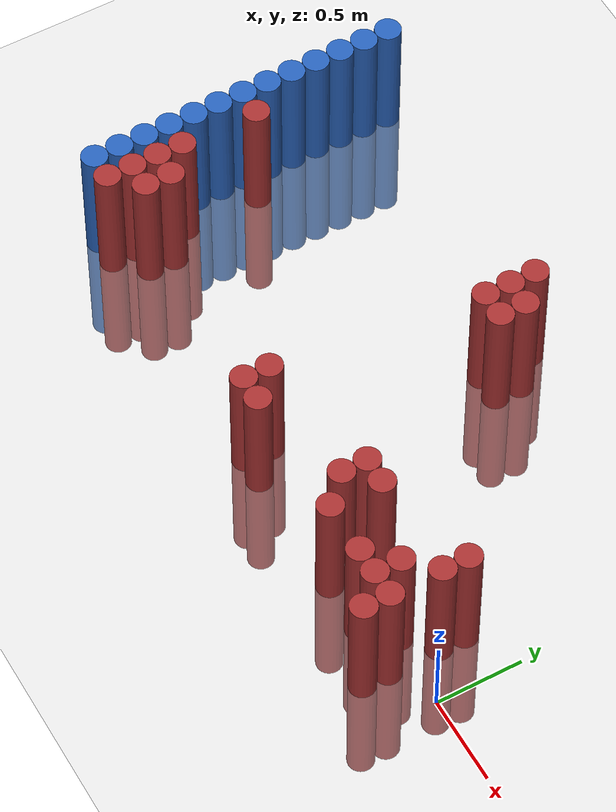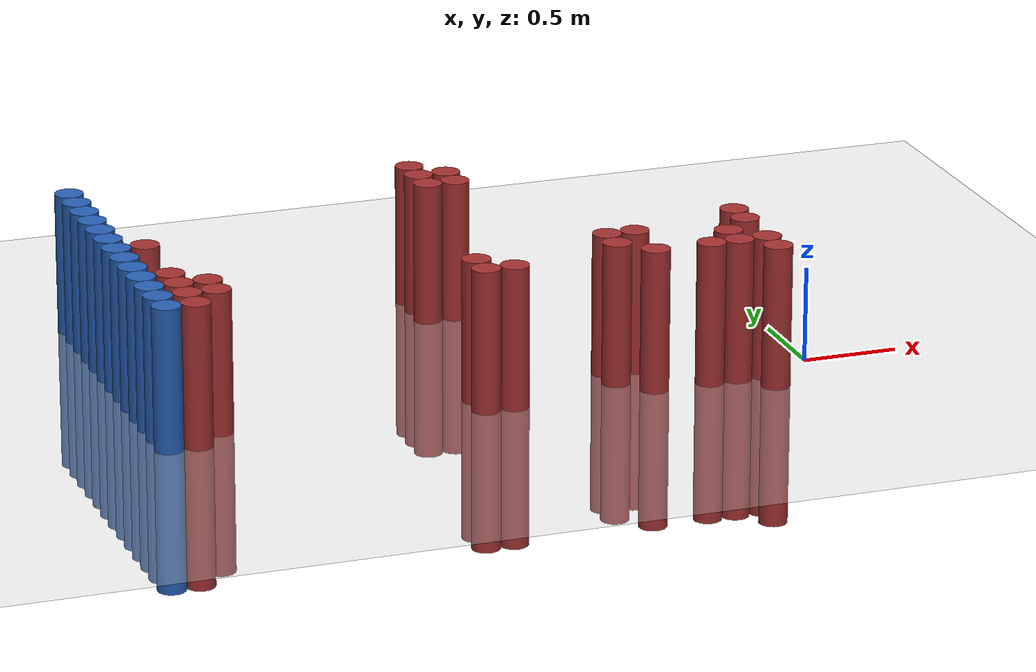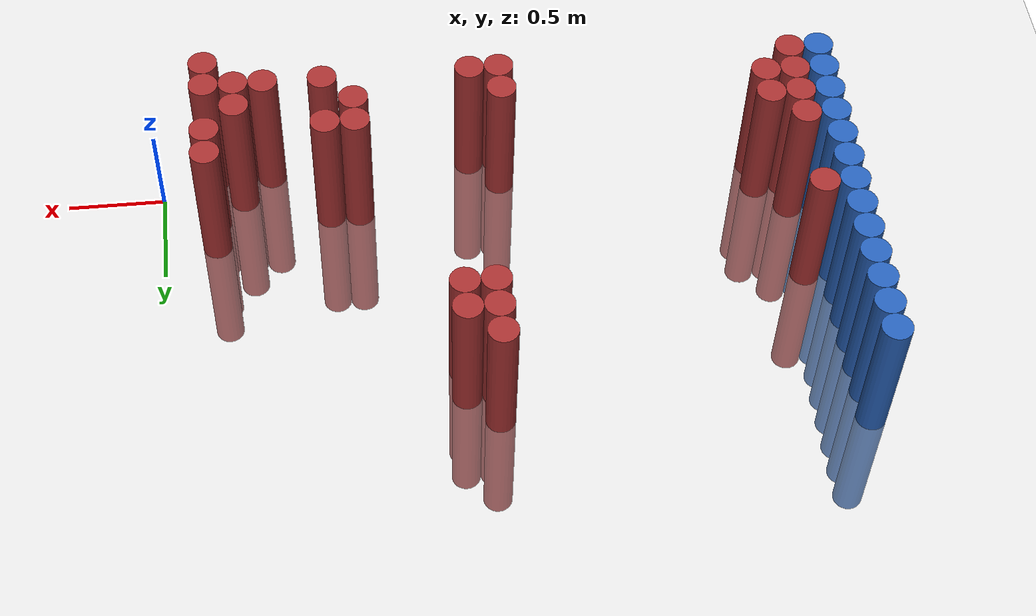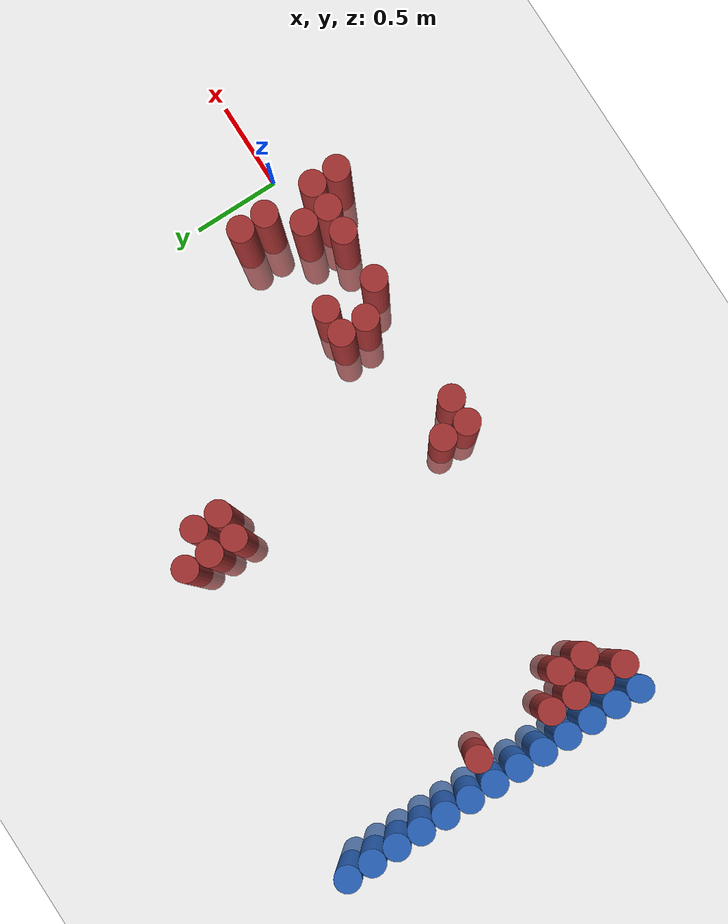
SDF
<sdf version="1.6">
 <world name="default">
  <model name="ground_plane">
   <static>1</static>
   <link name="link">
    <collision name="collision">
     <geometry><plane><normal>0 0 1</normal><size>100 100</size></plane></geometry>
     <surface><friction><ode><mu>100</mu><mu2>50</mu2></ode></friction></surface>
    </collision>
    <visual name="visual">
     <cast_shadows>0</cast_shadows>
     <geometry><plane><normal>0 0 1</normal><size>100 100</size></plane></geometry>
     <material>
      <script><uri>file://media/materials/scripts/gazebo.material</uri><name>Gazebo/Grey</name></script>
     </material>
    </visual>
   </link>
  </model>
  <model name="unit_cylinder_113">
   <static>1</static>
   <pose>-3.425000 -0.125000 0.000000 0.000000 0.000000 0.000000</pose>
   <link name="link">
    <inertial>
     <mass>1</mass>
     <inertia><ixx>0.145833</ixx><ixy>0</ixy><ixz>0</ixz><iyy>0.145833</iyy><iyz>0</iyz><izz>0.125</izz></inertia>
    </inertial>
    <collision name="collision">
     <geometry><cylinder><radius>0.075000</radius><length>1.5</length></cylinder></geometry>
    </collision>
    <visual name="visual">
     <geometry><cylinder><radius>0.075000</radius><length>1.5</length></cylinder></geometry>
     <material>
      <ambient>0.152000 0.379000 0.720000 1</ambient>
      <diffuse>0.152000 0.379000 0.720000 1</diffuse>
     </material>
     <material>
      <script><name>Gazebo/Grey</name><uri>file://media/materials/scripts/gazebo.material</uri></script>
     </material>
    </visual>
   </link>
  </model>
  <model name="unit_cylinder_115">
   <static>1</static>
   <pose>-3.425000 0.025000 0.000000 0.000000 0.000000 0.000000</pose>
   <link name="link">
    <inertial>
     <mass>1</mass>
     <inertia><ixx>0.145833</ixx><ixy>0</ixy><ixz>0</ixz><iyy>0.145833</iyy><iyz>0</iyz><izz>0.125</izz></inertia>
    </inertial>
    <collision name="collision">
     <geometry><cylinder><radius>0.075000</radius><length>1.5</length></cylinder></geometry>
    </collision>
    <visual name="visual">
     <geometry><cylinder><radius>0.075000</radius><length>1.5</length></cylinder></geometry>
     <material>
      <ambient>0.152000 0.379000 0.720000 1</ambient>
      <diffuse>0.152000 0.379000 0.720000 1</diffuse>
     </material>
     <material>
      <script><name>Gazebo/Grey</name><uri>file://media/materials/scripts/gazebo.material</uri></script>
     </material>
    </visual>
   </link>
  </model>
  <model name="unit_cylinder_117">
   <static>1</static>
   <pose>-3.425000 0.175000 0.000000 0.000000 0.000000 0.000000</pose>
   <link name="link">
    <inertial>
     <mass>1</mass>
     <inertia><ixx>0.145833</ixx><ixy>0</ixy><ixz>0</ixz><iyy>0.145833</iyy><iyz>0</iyz><izz>0.125</izz></inertia>
    </inertial>
    <collision name="collision">
     <geometry><cylinder><radius>0.075000</radius><length>1.5</length></cylinder></geometry>
    </collision>
    <visual name="visual">
     <geometry><cylinder><radius>0.075000</radius><length>1.5</length></cylinder></geometry>
     <material>
      <ambient>0.152000 0.379000 0.720000 1</ambient>
      <diffuse>0.152000 0.379000 0.720000 1</diffuse>
     </material>
     <material>
      <script><name>Gazebo/Grey</name><uri>file://media/materials/scripts/gazebo.material</uri></script>
     </material>
    </visual>
   </link>
  </model>
  <model name="unit_cylinder_119">
   <static>1</static>
   <pose>-3.425000 0.325000 0.000000 0.000000 0.000000 0.000000</pose>
   <link name="link">
    <inertial>
     <mass>1</mass>
     <inertia><ixx>0.145833</ixx><ixy>0</ixy><ixz>0</ixz><iyy>0.145833</iyy><iyz>0</iyz><izz>0.125</izz></inertia>
    </inertial>
    <collision name="collision">
     <geometry><cylinder><radius>0.075000</radius><length>1.5</length></cylinder></geometry>
    </collision>
    <visual name="visual">
     <geometry><cylinder><radius>0.075000</radius><length>1.5</length></cylinder></geometry>
     <material>
      <ambient>0.152000 0.379000 0.720000 1</ambient>
      <diffuse>0.152000 0.379000 0.720000 1</diffuse>
     </material>
     <material>
      <script><name>Gazebo/Grey</name><uri>file://media/materials/scripts/gazebo.material</uri></script>
     </material>
    </visual>
   </link>
  </model>
  <model name="unit_cylinder_121">
   <static>1</static>
   <pose>-3.425000 0.475000 0.000000 0.000000 0.000000 0.000000</pose>
   <link name="link">
    <inertial>
     <mass>1</mass>
     <inertia><ixx>0.145833</ixx><ixy>0</ixy><ixz>0</ixz><iyy>0.145833</iyy><iyz>0</iyz><izz>0.125</izz></inertia>
    </inertial>
    <collision name="collision">
     <geometry><cylinder><radius>0.075000</radius><length>1.5</length></cylinder></geometry>
    </collision>
    <visual name="visual">
     <geometry><cylinder><radius>0.075000</radius><length>1.5</length></cylinder></geometry>
     <material>
      <ambient>0.152000 0.379000 0.720000 1</ambient>
      <diffuse>0.152000 0.379000 0.720000 1</diffuse>
     </material>
     <material>
      <script><name>Gazebo/Grey</name><uri>file://media/materials/scripts/gazebo.material</uri></script>
     </material>
    </visual>
   </link>
  </model>
  <model name="unit_cylinder_123">
   <static>1</static>
   <pose>-3.425000 0.625000 0.000000 0.000000 0.000000 0.000000</pose>
   <link name="link">
    <inertial>
     <mass>1</mass>
     <inertia><ixx>0.145833</ixx><ixy>0</ixy><ixz>0</ixz><iyy>0.145833</iyy><iyz>0</iyz><izz>0.125</izz></inertia>
    </inertial>
    <collision name="collision">
     <geometry><cylinder><radius>0.075000</radius><length>1.5</length></cylinder></geometry>
    </collision>
    <visual name="visual">
     <geometry><cylinder><radius>0.075000</radius><length>1.5</length></cylinder></geometry>
     <material>
      <ambient>0.152000 0.379000 0.720000 1</ambient>
      <diffuse>0.152000 0.379000 0.720000 1</diffuse>
     </material>
     <material>
      <script><name>Gazebo/Grey</name><uri>file://media/materials/scripts/gazebo.material</uri></script>
     </material>
    </visual>
   </link>
  </model>
  <model name="unit_cylinder_125">
   <static>1</static>
   <pose>-3.425000 0.775000 0.000000 0.000000 0.000000 0.000000</pose>
   <link name="link">
    <inertial>
     <mass>1</mass>
     <inertia><ixx>0.145833</ixx><ixy>0</ixy><ixz>0</ixz><iyy>0.145833</iyy><iyz>0</iyz><izz>0.125</izz></inertia>
    </inertial>
    <collision name="collision">
     <geometry><cylinder><radius>0.075000</radius><length>1.5</length></cylinder></geometry>
    </collision>
    <visual name="visual">
     <geometry><cylinder><radius>0.075000</radius><length>1.5</length></cylinder></geometry>
     <material>
      <ambient>0.152000 0.379000 0.720000 1</ambient>
      <diffuse>0.152000 0.379000 0.720000 1</diffuse>
     </material>
     <material>
      <script><name>Gazebo/Grey</name><uri>file://media/materials/scripts/gazebo.material</uri></script>
     </material>
    </visual>
   </link>
  </model>
  <model name="unit_cylinder_127">
   <static>1</static>
   <pose>-3.425000 0.925000 0.000000 0.000000 0.000000 0.000000</pose>
   <link name="link">
    <inertial>
     <mass>1</mass>
     <inertia><ixx>0.145833</ixx><ixy>0</ixy><ixz>0</ixz><iyy>0.145833</iyy><iyz>0</iyz><izz>0.125</izz></inertia>
    </inertial>
    <collision name="collision">
     <geometry><cylinder><radius>0.075000</radius><length>1.5</length></cylinder></geometry>
    </collision>
    <visual name="visual">
     <geometry><cylinder><radius>0.075000</radius><length>1.5</length></cylinder></geometry>
     <material>
      <ambient>0.152000 0.379000 0.720000 1</ambient>
      <diffuse>0.152000 0.379000 0.720000 1</diffuse>
     </material>
     <material>
      <script><name>Gazebo/Grey</name><uri>file://media/materials/scripts/gazebo.material</uri></script>
     </material>
    </visual>
   </link>
  </model>
  <model name="unit_cylinder_129">
   <static>1</static>
   <pose>-3.425000 1.075000 0.000000 0.000000 0.000000 0.000000</pose>
   <link name="link">
    <inertial>
     <mass>1</mass>
     <inertia><ixx>0.145833</ixx><ixy>0</ixy><ixz>0</ixz><iyy>0.145833</iyy><iyz>0</iyz><izz>0.125</izz></inertia>
    </inertial>
    <collision name="collision">
     <geometry><cylinder><radius>0.075000</radius><length>1.5</length></cylinder></geometry>
    </collision>
    <visual name="visual">
     <geometry><cylinder><radius>0.075000</radius><length>1.5</length></cylinder></geometry>
     <material>
      <ambient>0.152000 0.379000 0.720000 1</ambient>
      <diffuse>0.152000 0.379000 0.720000 1</diffuse>
     </material>
     <material>
      <script><name>Gazebo/Grey</name><uri>file://media/materials/scripts/gazebo.material</uri></script>
     </material>
    </visual>
   </link>
  </model>
  <model name="unit_cylinder_131">
   <static>1</static>
   <pose>-3.425000 1.225000 0.000000 0.000000 0.000000 0.000000</pose>
   <link name="link">
    <inertial>
     <mass>1</mass>
     <inertia><ixx>0.145833</ixx><ixy>0</ixy><ixz>0</ixz><iyy>0.145833</iyy><iyz>0</iyz><izz>0.125</izz></inertia>
    </inertial>
    <collision name="collision">
     <geometry><cylinder><radius>0.075000</radius><length>1.5</length></cylinder></geometry>
    </collision>
    <visual name="visual">
     <geometry><cylinder><radius>0.075000</radius><length>1.5</length></cylinder></geometry>
     <material>
      <ambient>0.152000 0.379000 0.720000 1</ambient>
      <diffuse>0.152000 0.379000 0.720000 1</diffuse>
     </material>
     <material>
      <script><name>Gazebo/Grey</name><uri>file://media/materials/scripts/gazebo.material</uri></script>
     </material>
    </visual>
   </link>
  </model>
  <model name="unit_cylinder_133">
   <static>1</static>
   <pose>-3.425000 1.375000 0.000000 0.000000 0.000000 0.000000</pose>
   <link name="link">
    <inertial>
     <mass>1</mass>
     <inertia><ixx>0.145833</ixx><ixy>0</ixy><ixz>0</ixz><iyy>0.145833</iyy><iyz>0</iyz><izz>0.125</izz></inertia>
    </inertial>
    <collision name="collision">
     <geometry><cylinder><radius>0.075000</radius><length>1.5</length></cylinder></geometry>
    </collision>
    <visual name="visual">
     <geometry><cylinder><radius>0.075000</radius><length>1.5</length></cylinder></geometry>
     <material>
      <ambient>0.152000 0.379000 0.720000 1</ambient>
      <diffuse>0.152000 0.379000 0.720000 1</diffuse>
     </material>
     <material>
      <script><name>Gazebo/Grey</name><uri>file://media/materials/scripts/gazebo.material</uri></script>
     </material>
    </visual>
   </link>
  </model>
  <model name="unit_cylinder_135">
   <static>1</static>
   <pose>-3.425000 1.525000 0.000000 0.000000 0.000000 0.000000</pose>
   <link name="link">
    <inertial>
     <mass>1</mass>
     <inertia><ixx>0.145833</ixx><ixy>0</ixy><ixz>0</ixz><iyy>0.145833</iyy><iyz>0</iyz><izz>0.125</izz></inertia>
    </inertial>
    <collision name="collision">
     <geometry><cylinder><radius>0.075000</radius><length>1.5</length></cylinder></geometry>
    </collision>
    <visual name="visual">
     <geometry><cylinder><radius>0.075000</radius><length>1.5</length></cylinder></geometry>
     <material>
      <ambient>0.152000 0.379000 0.720000 1</ambient>
      <diffuse>0.152000 0.379000 0.720000 1</diffuse>
     </material>
     <material>
      <script><name>Gazebo/Grey</name><uri>file://media/materials/scripts/gazebo.material</uri></script>
     </material>
    </visual>
   </link>
  </model>
  <model name="unit_cylinder_137">
   <static>1</static>
   <pose>-3.425000 1.675000 0.000000 0.000000 0.000000 0.000000</pose>
   <link name="link">
    <inertial>
     <mass>1</mass>
     <inertia><ixx>0.145833</ixx><ixy>0</ixy><ixz>0</ixz><iyy>0.145833</iyy><iyz>0</iyz><izz>0.125</izz></inertia>
    </inertial>
    <collision name="collision">
     <geometry><cylinder><radius>0.075000</radius><length>1.5</length></cylinder></geometry>
    </collision>
    <visual name="visual">
     <geometry><cylinder><radius>0.075000</radius><length>1.5</length></cylinder></geometry>
     <material>
      <ambient>0.152000 0.379000 0.720000 1</ambient>
      <diffuse>0.152000 0.379000 0.720000 1</diffuse>
     </material>
     <material>
      <script><name>Gazebo/Grey</name><uri>file://media/materials/scripts/gazebo.material</uri></script>
     </material>
    </visual>
   </link>
  </model>
  <model name="unit_cylinder_220">
   <static>1</static>
   <pose>-3.425000 -0.125000 0.000000 0.000000 0.000000 0.000000</pose>
   <link name="link">
    <inertial>
     <mass>1</mass>
     <inertia><ixx>0.145833</ixx><ixy>0</ixy><ixz>0</ixz><iyy>0.145833</iyy><iyz>0</iyz><izz>0.125</izz></inertia>
    </inertial>
    <collision name="collision">
     <geometry><cylinder><radius>0.075000</radius><length>1.5</length></cylinder></geometry>
    </collision>
    <visual name="visual">
     <geometry><cylinder><radius>0.075000</radius><length>1.5</length></cylinder></geometry>
     <material>
      <ambient>0.152000 0.379000 0.720000 1</ambient>
      <diffuse>0.152000 0.379000 0.720000 1</diffuse>
     </material>
     <material>
      <script><name>Gazebo/Grey</name><uri>file://media/materials/scripts/gazebo.material</uri></script>
     </material>
    </visual>
   </link>
  </model>
  <model name="unit_cylinder_221">
   <static>1</static>
   <pose>-3.425000 0.025000 0.000000 0.000000 0.000000 0.000000</pose>
   <link name="link">
    <inertial>
     <mass>1</mass>
     <inertia><ixx>0.145833</ixx><ixy>0</ixy><ixz>0</ixz><iyy>0.145833</iyy><iyz>0</iyz><izz>0.125</izz></inertia>
    </inertial>
    <collision name="collision">
     <geometry><cylinder><radius>0.075000</radius><length>1.5</length></cylinder></geometry>
    </collision>
    <visual name="visual">
     <geometry><cylinder><radius>0.075000</radius><length>1.5</length></cylinder></geometry>
     <material>
      <ambient>0.152000 0.379000 0.720000 1</ambient>
      <diffuse>0.152000 0.379000 0.720000 1</diffuse>
     </material>
     <material>
      <script><name>Gazebo/Grey</name><uri>file://media/materials/scripts/gazebo.material</uri></script>
     </material>
    </visual>
   </link>
  </model>
  <model name="unit_cylinder_222">
   <static>1</static>
   <pose>-3.425000 0.175000 0.000000 0.000000 0.000000 0.000000</pose>
   <link name="link">
    <inertial>
     <mass>1</mass>
     <inertia><ixx>0.145833</ixx><ixy>0</ixy><ixz>0</ixz><iyy>0.145833</iyy><iyz>0</iyz><izz>0.125</izz></inertia>
    </inertial>
    <collision name="collision">
     <geometry><cylinder><radius>0.075000</radius><length>1.5</length></cylinder></geometry>
    </collision>
    <visual name="visual">
     <geometry><cylinder><radius>0.075000</radius><length>1.5</length></cylinder></geometry>
     <material>
      <ambient>0.152000 0.379000 0.720000 1</ambient>
      <diffuse>0.152000 0.379000 0.720000 1</diffuse>
     </material>
     <material>
      <script><name>Gazebo/Grey</name><uri>file://media/materials/scripts/gazebo.material</uri></script>
     </material>
    </visual>
   </link>
  </model>
  <model name="unit_cylinder_223">
   <static>1</static>
   <pose>-3.425000 0.325000 0.000000 0.000000 0.000000 0.000000</pose>
   <link name="link">
    <inertial>
     <mass>1</mass>
     <inertia><ixx>0.145833</ixx><ixy>0</ixy><ixz>0</ixz><iyy>0.145833</iyy><iyz>0</iyz><izz>0.125</izz></inertia>
    </inertial>
    <collision name="collision">
     <geometry><cylinder><radius>0.075000</radius><length>1.5</length></cylinder></geometry>
    </collision>
    <visual name="visual">
     <geometry><cylinder><radius>0.075000</radius><length>1.5</length></cylinder></geometry>
     <material>
      <ambient>0.152000 0.379000 0.720000 1</ambient>
      <diffuse>0.152000 0.379000 0.720000 1</diffuse>
     </material>
     <material>
      <script><name>Gazebo/Grey</name><uri>file://media/materials/scripts/gazebo.material</uri></script>
     </material>
    </visual>
   </link>
  </model>
  <model name="unit_cylinder_224">
   <static>1</static>
   <pose>-3.425000 0.475000 0.000000 0.000000 0.000000 0.000000</pose>
   <link name="link">
    <inertial>
     <mass>1</mass>
     <inertia><ixx>0.145833</ixx><ixy>0</ixy><ixz>0</ixz><iyy>0.145833</iyy><iyz>0</iyz><izz>0.125</izz></inertia>
    </inertial>
    <collision name="collision">
     <geometry><cylinder><radius>0.075000</radius><length>1.5</length></cylinder></geometry>
    </collision>
    <visual name="visual">
     <geometry><cylinder><radius>0.075000</radius><length>1.5</length></cylinder></geometry>
     <material>
      <ambient>0.152000 0.379000 0.720000 1</ambient>
      <diffuse>0.152000 0.379000 0.720000 1</diffuse>
     </material>
     <material>
      <script><name>Gazebo/Grey</name><uri>file://media/materials/scripts/gazebo.material</uri></script>
     </material>
    </visual>
   </link>
  </model>
  <model name="unit_cylinder_225">
   <static>1</static>
   <pose>-3.425000 0.625000 0.000000 0.000000 0.000000 0.000000</pose>
   <link name="link">
    <inertial>
     <mass>1</mass>
     <inertia><ixx>0.145833</ixx><ixy>0</ixy><ixz>0</ixz><iyy>0.145833</iyy><iyz>0</iyz><izz>0.125</izz></inertia>
    </inertial>
    <collision name="collision">
     <geometry><cylinder><radius>0.075000</radius><length>1.5</length></cylinder></geometry>
    </collision>
    <visual name="visual">
     <geometry><cylinder><radius>0.075000</radius><length>1.5</length></cylinder></geometry>
     <material>
      <ambient>0.152000 0.379000 0.720000 1</ambient>
      <diffuse>0.152000 0.379000 0.720000 1</diffuse>
     </material>
     <material>
      <script><name>Gazebo/Grey</name><uri>file://media/materials/scripts/gazebo.material</uri></script>
     </material>
    </visual>
   </link>
  </model>
  <model name="unit_cylinder_226">
   <static>1</static>
   <pose>-3.425000 0.775000 0.000000 0.000000 0.000000 0.000000</pose>
   <link name="link">
    <inertial>
     <mass>1</mass>
     <inertia><ixx>0.145833</ixx><ixy>0</ixy><ixz>0</ixz><iyy>0.145833</iyy><iyz>0</iyz><izz>0.125</izz></inertia>
    </inertial>
    <collision name="collision">
     <geometry><cylinder><radius>0.075000</radius><length>1.5</length></cylinder></geometry>
    </collision>
    <visual name="visual">
     <geometry><cylinder><radius>0.075000</radius><length>1.5</length></cylinder></geometry>
     <material>
      <ambient>0.152000 0.379000 0.720000 1</ambient>
      <diffuse>0.152000 0.379000 0.720000 1</diffuse>
     </material>
     <material>
      <script><name>Gazebo/Grey</name><uri>file://media/materials/scripts/gazebo.material</uri></script>
     </material>
    </visual>
   </link>
  </model>
  <model name="unit_cylinder_227">
   <static>1</static>
   <pose>-3.425000 0.925000 0.000000 0.000000 0.000000 0.000000</pose>
   <link name="link">
    <inertial>
     <mass>1</mass>
     <inertia><ixx>0.145833</ixx><ixy>0</ixy><ixz>0</ixz><iyy>0.145833</iyy><iyz>0</iyz><izz>0.125</izz></inertia>
    </inertial>
    <collision name="collision">
     <geometry><cylinder><radius>0.075000</radius><length>1.5</length></cylinder></geometry>
    </collision>
    <visual name="visual">
     <geometry><cylinder><radius>0.075000</radius><length>1.5</length></cylinder></geometry>
     <material>
      <ambient>0.152000 0.379000 0.720000 1</ambient>
      <diffuse>0.152000 0.379000 0.720000 1</diffuse>
     </material>
     <material>
      <script><name>Gazebo/Grey</name><uri>file://media/materials/scripts/gazebo.material</uri></script>
     </material>
    </visual>
   </link>
  </model>
  <model name="unit_cylinder_228">
   <static>1</static>
   <pose>-3.425000 1.075000 0.000000 0.000000 0.000000 0.000000</pose>
   <link name="link">
    <inertial>
     <mass>1</mass>
     <inertia><ixx>0.145833</ixx><ixy>0</ixy><ixz>0</ixz><iyy>0.145833</iyy><iyz>0</iyz><izz>0.125</izz></inertia>
    </inertial>
    <collision name="collision">
     <geometry><cylinder><radius>0.075000</radius><length>1.5</length></cylinder></geometry>
    </collision>
    <visual name="visual">
     <geometry><cylinder><radius>0.075000</radius><length>1.5</length></cylinder></geometry>
     <material>
      <ambient>0.152000 0.379000 0.720000 1</ambient>
      <diffuse>0.152000 0.379000 0.720000 1</diffuse>
     </material>
     <material>
      <script><name>Gazebo/Grey</name><uri>file://media/materials/scripts/gazebo.material</uri></script>
     </material>
    </visual>
   </link>
  </model>
  <model name="unit_cylinder_229">
   <static>1</static>
   <pose>-3.425000 1.225000 0.000000 0.000000 0.000000 0.000000</pose>
   <link name="link">
    <inertial>
     <mass>1</mass>
     <inertia><ixx>0.145833</ixx><ixy>0</ixy><ixz>0</ixz><iyy>0.145833</iyy><iyz>0</iyz><izz>0.125</izz></inertia>
    </inertial>
    <collision name="collision">
     <geometry><cylinder><radius>0.075000</radius><length>1.5</length></cylinder></geometry>
    </collision>
    <visual name="visual">
     <geometry><cylinder><radius>0.075000</radius><length>1.5</length></cylinder></geometry>
     <material>
      <ambient>0.152000 0.379000 0.720000 1</ambient>
      <diffuse>0.152000 0.379000 0.720000 1</diffuse>
     </material>
     <material>
      <script><name>Gazebo/Grey</name><uri>file://media/materials/scripts/gazebo.material</uri></script>
     </material>
    </visual>
   </link>
  </model>
  <model name="unit_cylinder_230">
   <static>1</static>
   <pose>-3.425000 1.375000 0.000000 0.000000 0.000000 0.000000</pose>
   <link name="link">
    <inertial>
     <mass>1</mass>
     <inertia><ixx>0.145833</ixx><ixy>0</ixy><ixz>0</ixz><iyy>0.145833</iyy><iyz>0</iyz><izz>0.125</izz></inertia>
    </inertial>
    <collision name="collision">
     <geometry><cylinder><radius>0.075000</radius><length>1.5</length></cylinder></geometry>
    </collision>
    <visual name="visual">
     <geometry><cylinder><radius>0.075000</radius><length>1.5</length></cylinder></geometry>
     <material>
      <ambient>0.152000 0.379000 0.720000 1</ambient>
      <diffuse>0.152000 0.379000 0.720000 1</diffuse>
     </material>
     <material>
      <script><name>Gazebo/Grey</name><uri>file://media/materials/scripts/gazebo.material</uri></script>
     </material>
    </visual>
   </link>
  </model>
  <model name="unit_cylinder_231">
   <static>1</static>
   <pose>-3.425000 1.525000 0.000000 0.000000 0.000000 0.000000</pose>
   <link name="link">
    <inertial>
     <mass>1</mass>
     <inertia><ixx>0.145833</ixx><ixy>0</ixy><ixz>0</ixz><iyy>0.145833</iyy><iyz>0</iyz><izz>0.125</izz></inertia>
    </inertial>
    <collision name="collision">
     <geometry><cylinder><radius>0.075000</radius><length>1.5</length></cylinder></geometry>
    </collision>
    <visual name="visual">
     <geometry><cylinder><radius>0.075000</radius><length>1.5</length></cylinder></geometry>
     <material>
      <ambient>0.152000 0.379000 0.720000 1</ambient>
      <diffuse>0.152000 0.379000 0.720000 1</diffuse>
     </material>
     <material>
      <script><name>Gazebo/Grey</name><uri>file://media/materials/scripts/gazebo.material</uri></script>
     </material>
    </visual>
   </link>
  </model>
  <model name="unit_cylinder_232">
   <static>1</static>
   <pose>-3.425000 1.675000 0.000000 0.000000 0.000000 0.000000</pose>
   <link name="link">
    <inertial>
     <mass>1</mass>
     <inertia><ixx>0.145833</ixx><ixy>0</ixy><ixz>0</ixz><iyy>0.145833</iyy><iyz>0</iyz><izz>0.125</izz></inertia>
    </inertial>
    <collision name="collision">
     <geometry><cylinder><radius>0.075000</radius><length>1.5</length></cylinder></geometry>
    </collision>
    <visual name="visual">
     <geometry><cylinder><radius>0.075000</radius><length>1.5</length></cylinder></geometry>
     <material>
      <ambient>0.152000 0.379000 0.720000 1</ambient>
      <diffuse>0.152000 0.379000 0.720000 1</diffuse>
     </material>
     <material>
      <script><name>Gazebo/Grey</name><uri>file://media/materials/scripts/gazebo.material</uri></script>
     </material>
    </visual>
   </link>
  </model>
  <model name="unit_cylinder_267">
   <static>1</static>
   <pose>-3.275000 -0.125000 0.000000 0.000000 0.000000 0.000000</pose>
   <link name="link">
    <inertial>
     <mass>1</mass>
     <inertia><ixx>0.145833</ixx><ixy>0</ixy><ixz>0</ixz><iyy>0.145833</iyy><iyz>0</iyz><izz>0.125</izz></inertia>
    </inertial>
    <collision name="collision">
     <geometry><cylinder><radius>0.075000</radius><length>1.5</length></cylinder></geometry>
    </collision>
    <visual name="visual">
     <geometry><cylinder><radius>0.075000</radius><length>1.5</length></cylinder></geometry>
     <material>
      <ambient>0.648000 0.192000 0.192000 1</ambient>
      <diffuse>0.648000 0.192000 0.192000 1</diffuse>
     </material>
     <material>
      <script><name>Gazebo/Grey</name><uri>file://media/materials/scripts/gazebo.material</uri></script>
     </material>
    </visual>
   </link>
  </model>
  <model name="unit_cylinder_268">
   <static>1</static>
   <pose>-3.275000 0.025000 0.000000 0.000000 0.000000 0.000000</pose>
   <link name="link">
    <inertial>
     <mass>1</mass>
     <inertia><ixx>0.145833</ixx><ixy>0</ixy><ixz>0</ixz><iyy>0.145833</iyy><iyz>0</iyz><izz>0.125</izz></inertia>
    </inertial>
    <collision name="collision">
     <geometry><cylinder><radius>0.075000</radius><length>1.5</length></cylinder></geometry>
    </collision>
    <visual name="visual">
     <geometry><cylinder><radius>0.075000</radius><length>1.5</length></cylinder></geometry>
     <material>
      <ambient>0.648000 0.192000 0.192000 1</ambient>
      <diffuse>0.648000 0.192000 0.192000 1</diffuse>
     </material>
     <material>
      <script><name>Gazebo/Grey</name><uri>file://media/materials/scripts/gazebo.material</uri></script>
     </material>
    </visual>
   </link>
  </model>
  <model name="unit_cylinder_269">
   <static>1</static>
   <pose>-3.275000 0.175000 0.000000 0.000000 0.000000 0.000000</pose>
   <link name="link">
    <inertial>
     <mass>1</mass>
     <inertia><ixx>0.145833</ixx><ixy>0</ixy><ixz>0</ixz><iyy>0.145833</iyy><iyz>0</iyz><izz>0.125</izz></inertia>
    </inertial>
    <collision name="collision">
     <geometry><cylinder><radius>0.075000</radius><length>1.5</length></cylinder></geometry>
    </collision>
    <visual name="visual">
     <geometry><cylinder><radius>0.075000</radius><length>1.5</length></cylinder></geometry>
     <material>
      <ambient>0.648000 0.192000 0.192000 1</ambient>
      <diffuse>0.648000 0.192000 0.192000 1</diffuse>
     </material>
     <material>
      <script><name>Gazebo/Grey</name><uri>file://media/materials/scripts/gazebo.material</uri></script>
     </material>
    </visual>
   </link>
  </model>
  <model name="unit_cylinder_270">
   <static>1</static>
   <pose>-3.275000 0.325000 0.000000 0.000000 0.000000 0.000000</pose>
   <link name="link">
    <inertial>
     <mass>1</mass>
     <inertia><ixx>0.145833</ixx><ixy>0</ixy><ixz>0</ixz><iyy>0.145833</iyy><iyz>0</iyz><izz>0.125</izz></inertia>
    </inertial>
    <collision name="collision">
     <geometry><cylinder><radius>0.075000</radius><length>1.5</length></cylinder></geometry>
    </collision>
    <visual name="visual">
     <geometry><cylinder><radius>0.075000</radius><length>1.5</length></cylinder></geometry>
     <material>
      <ambient>0.648000 0.192000 0.192000 1</ambient>
      <diffuse>0.648000 0.192000 0.192000 1</diffuse>
     </material>
     <material>
      <script><name>Gazebo/Grey</name><uri>file://media/materials/scripts/gazebo.material</uri></script>
     </material>
    </visual>
   </link>
  </model>
  <model name="unit_cylinder_271">
   <static>1</static>
   <pose>-3.275000 0.775000 0.000000 0.000000 0.000000 0.000000</pose>
   <link name="link">
    <inertial>
     <mass>1</mass>
     <inertia><ixx>0.145833</ixx><ixy>0</ixy><ixz>0</ixz><iyy>0.145833</iyy><iyz>0</iyz><izz>0.125</izz></inertia>
    </inertial>
    <collision name="collision">
     <geometry><cylinder><radius>0.075000</radius><length>1.5</length></cylinder></geometry>
    </collision>
    <visual name="visual">
     <geometry><cylinder><radius>0.075000</radius><length>1.5</length></cylinder></geometry>
     <material>
      <ambient>0.648000 0.192000 0.192000 1</ambient>
      <diffuse>0.648000 0.192000 0.192000 1</diffuse>
     </material>
     <material>
      <script><name>Gazebo/Grey</name><uri>file://media/materials/scripts/gazebo.material</uri></script>
     </material>
    </visual>
   </link>
  </model>
  <model name="unit_cylinder_288">
   <static>1</static>
   <pose>-3.125000 0.025000 0.000000 0.000000 0.000000 0.000000</pose>
   <link name="link">
    <inertial>
     <mass>1</mass>
     <inertia><ixx>0.145833</ixx><ixy>0</ixy><ixz>0</ixz><iyy>0.145833</iyy><iyz>0</iyz><izz>0.125</izz></inertia>
    </inertial>
    <collision name="collision">
     <geometry><cylinder><radius>0.075000</radius><length>1.5</length></cylinder></geometry>
    </collision>
    <visual name="visual">
     <geometry><cylinder><radius>0.075000</radius><length>1.5</length></cylinder></geometry>
     <material>
      <ambient>0.648000 0.192000 0.192000 1</ambient>
      <diffuse>0.648000 0.192000 0.192000 1</diffuse>
     </material>
     <material>
      <script><name>Gazebo/Grey</name><uri>file://media/materials/scripts/gazebo.material</uri></script>
     </material>
    </visual>
   </link>
  </model>
  <model name="unit_cylinder_289">
   <static>1</static>
   <pose>-3.125000 0.175000 0.000000 0.000000 0.000000 0.000000</pose>
   <link name="link">
    <inertial>
     <mass>1</mass>
     <inertia><ixx>0.145833</ixx><ixy>0</ixy><ixz>0</ixz><iyy>0.145833</iyy><iyz>0</iyz><izz>0.125</izz></inertia>
    </inertial>
    <collision name="collision">
     <geometry><cylinder><radius>0.075000</radius><length>1.5</length></cylinder></geometry>
    </collision>
    <visual name="visual">
     <geometry><cylinder><radius>0.075000</radius><length>1.5</length></cylinder></geometry>
     <material>
      <ambient>0.648000 0.192000 0.192000 1</ambient>
      <diffuse>0.648000 0.192000 0.192000 1</diffuse>
     </material>
     <material>
      <script><name>Gazebo/Grey</name><uri>file://media/materials/scripts/gazebo.material</uri></script>
     </material>
    </visual>
   </link>
  </model>
  <model name="unit_cylinder_359">
   <static>1</static>
   <pose>-1.775000 -0.125000 0.000000 0.000000 0.000000 0.000000</pose>
   <link name="link">
    <inertial>
     <mass>1</mass>
     <inertia><ixx>0.145833</ixx><ixy>0</ixy><ixz>0</ixz><iyy>0.145833</iyy><iyz>0</iyz><izz>0.125</izz></inertia>
    </inertial>
    <collision name="collision">
     <geometry><cylinder><radius>0.075000</radius><length>1.5</length></cylinder></geometry>
    </collision>
    <visual name="visual">
     <geometry><cylinder><radius>0.075000</radius><length>1.5</length></cylinder></geometry>
     <material>
      <ambient>0.648000 0.192000 0.192000 1</ambient>
      <diffuse>0.648000 0.192000 0.192000 1</diffuse>
     </material>
     <material>
      <script><name>Gazebo/Grey</name><uri>file://media/materials/scripts/gazebo.material</uri></script>
     </material>
    </visual>
   </link>
  </model>
  <model name="unit_cylinder_360">
   <static>1</static>
   <pose>-1.775000 0.025000 0.000000 0.000000 0.000000 0.000000</pose>
   <link name="link">
    <inertial>
     <mass>1</mass>
     <inertia><ixx>0.145833</ixx><ixy>0</ixy><ixz>0</ixz><iyy>0.145833</iyy><iyz>0</iyz><izz>0.125</izz></inertia>
    </inertial>
    <collision name="collision">
     <geometry><cylinder><radius>0.075000</radius><length>1.5</length></cylinder></geometry>
    </collision>
    <visual name="visual">
     <geometry><cylinder><radius>0.075000</radius><length>1.5</length></cylinder></geometry>
     <material>
      <ambient>0.648000 0.192000 0.192000 1</ambient>
      <diffuse>0.648000 0.192000 0.192000 1</diffuse>
     </material>
     <material>
      <script><name>Gazebo/Grey</name><uri>file://media/materials/scripts/gazebo.material</uri></script>
     </material>
    </visual>
   </link>
  </model>
  <model name="unit_cylinder_366">
   <static>1</static>
   <pose>-1.625000 -0.125000 0.000000 0.000000 0.000000 0.000000</pose>
   <link name="link">
    <inertial>
     <mass>1</mass>
     <inertia><ixx>0.145833</ixx><ixy>0</ixy><ixz>0</ixz><iyy>0.145833</iyy><iyz>0</iyz><izz>0.125</izz></inertia>
    </inertial>
    <collision name="collision">
     <geometry><cylinder><radius>0.075000</radius><length>1.5</length></cylinder></geometry>
    </collision>
    <visual name="visual">
     <geometry><cylinder><radius>0.075000</radius><length>1.5</length></cylinder></geometry>
     <material>
      <ambient>0.648000 0.192000 0.192000 1</ambient>
      <diffuse>0.648000 0.192000 0.192000 1</diffuse>
     </material>
     <material>
      <script><name>Gazebo/Grey</name><uri>file://media/materials/scripts/gazebo.material</uri></script>
     </material>
    </visual>
   </link>
  </model>
  <model name="unit_cylinder_367">
   <static>1</static>
   <pose>-1.625000 1.225000 0.000000 0.000000 0.000000 0.000000</pose>
   <link name="link">
    <inertial>
     <mass>1</mass>
     <inertia><ixx>0.145833</ixx><ixy>0</ixy><ixz>0</ixz><iyy>0.145833</iyy><iyz>0</iyz><izz>0.125</izz></inertia>
    </inertial>
    <collision name="collision">
     <geometry><cylinder><radius>0.075000</radius><length>1.5</length></cylinder></geometry>
    </collision>
    <visual name="visual">
     <geometry><cylinder><radius>0.075000</radius><length>1.5</length></cylinder></geometry>
     <material>
      <ambient>0.648000 0.192000 0.192000 1</ambient>
      <diffuse>0.648000 0.192000 0.192000 1</diffuse>
     </material>
     <material>
      <script><name>Gazebo/Grey</name><uri>file://media/materials/scripts/gazebo.material</uri></script>
     </material>
    </visual>
   </link>
  </model>
  <model name="unit_cylinder_368">
   <static>1</static>
   <pose>-1.625000 1.375000 0.000000 0.000000 0.000000 0.000000</pose>
   <link name="link">
    <inertial>
     <mass>1</mass>
     <inertia><ixx>0.145833</ixx><ixy>0</ixy><ixz>0</ixz><iyy>0.145833</iyy><iyz>0</iyz><izz>0.125</izz></inertia>
    </inertial>
    <collision name="collision">
     <geometry><cylinder><radius>0.075000</radius><length>1.5</length></cylinder></geometry>
    </collision>
    <visual name="visual">
     <geometry><cylinder><radius>0.075000</radius><length>1.5</length></cylinder></geometry>
     <material>
      <ambient>0.648000 0.192000 0.192000 1</ambient>
      <diffuse>0.648000 0.192000 0.192000 1</diffuse>
     </material>
     <material>
      <script><name>Gazebo/Grey</name><uri>file://media/materials/scripts/gazebo.material</uri></script>
     </material>
    </visual>
   </link>
  </model>
  <model name="unit_cylinder_369">
   <static>1</static>
   <pose>-1.625000 1.525000 0.000000 0.000000 0.000000 0.000000</pose>
   <link name="link">
    <inertial>
     <mass>1</mass>
     <inertia><ixx>0.145833</ixx><ixy>0</ixy><ixz>0</ixz><iyy>0.145833</iyy><iyz>0</iyz><izz>0.125</izz></inertia>
    </inertial>
    <collision name="collision">
     <geometry><cylinder><radius>0.075000</radius><length>1.5</length></cylinder></geometry>
    </collision>
    <visual name="visual">
     <geometry><cylinder><radius>0.075000</radius><length>1.5</length></cylinder></geometry>
     <material>
      <ambient>0.648000 0.192000 0.192000 1</ambient>
      <diffuse>0.648000 0.192000 0.192000 1</diffuse>
     </material>
     <material>
      <script><name>Gazebo/Grey</name><uri>file://media/materials/scripts/gazebo.material</uri></script>
     </material>
    </visual>
   </link>
  </model>
  <model name="unit_cylinder_374">
   <static>1</static>
   <pose>-1.475000 1.225000 0.000000 0.000000 0.000000 0.000000</pose>
   <link name="link">
    <inertial>
     <mass>1</mass>
     <inertia><ixx>0.145833</ixx><ixy>0</ixy><ixz>0</ixz><iyy>0.145833</iyy><iyz>0</iyz><izz>0.125</izz></inertia>
    </inertial>
    <collision name="collision">
     <geometry><cylinder><radius>0.075000</radius><length>1.5</length></cylinder></geometry>
    </collision>
    <visual name="visual">
     <geometry><cylinder><radius>0.075000</radius><length>1.5</length></cylinder></geometry>
     <material>
      <ambient>0.648000 0.192000 0.192000 1</ambient>
      <diffuse>0.648000 0.192000 0.192000 1</diffuse>
     </material>
     <material>
      <script><name>Gazebo/Grey</name><uri>file://media/materials/scripts/gazebo.material</uri></script>
     </material>
    </visual>
   </link>
  </model>
  <model name="unit_cylinder_375">
   <static>1</static>
   <pose>-1.475000 1.375000 0.000000 0.000000 0.000000 0.000000</pose>
   <link name="link">
    <inertial>
     <mass>1</mass>
     <inertia><ixx>0.145833</ixx><ixy>0</ixy><ixz>0</ixz><iyy>0.145833</iyy><iyz>0</iyz><izz>0.125</izz></inertia>
    </inertial>
    <collision name="collision">
     <geometry><cylinder><radius>0.075000</radius><length>1.5</length></cylinder></geometry>
    </collision>
    <visual name="visual">
     <geometry><cylinder><radius>0.075000</radius><length>1.5</length></cylinder></geometry>
     <material>
      <ambient>0.648000 0.192000 0.192000 1</ambient>
      <diffuse>0.648000 0.192000 0.192000 1</diffuse>
     </material>
     <material>
      <script><name>Gazebo/Grey</name><uri>file://media/materials/scripts/gazebo.material</uri></script>
     </material>
    </visual>
   </link>
  </model>
  <model name="unit_cylinder_383">
   <static>1</static>
   <pose>-1.025000 0.025000 0.000000 0.000000 0.000000 0.000000</pose>
   <link name="link">
    <inertial>
     <mass>1</mass>
     <inertia><ixx>0.145833</ixx><ixy>0</ixy><ixz>0</ixz><iyy>0.145833</iyy><iyz>0</iyz><izz>0.125</izz></inertia>
    </inertial>
    <collision name="collision">
     <geometry><cylinder><radius>0.075000</radius><length>1.5</length></cylinder></geometry>
    </collision>
    <visual name="visual">
     <geometry><cylinder><radius>0.075000</radius><length>1.5</length></cylinder></geometry>
     <material>
      <ambient>0.648000 0.192000 0.192000 1</ambient>
      <diffuse>0.648000 0.192000 0.192000 1</diffuse>
     </material>
     <material>
      <script><name>Gazebo/Grey</name><uri>file://media/materials/scripts/gazebo.material</uri></script>
     </material>
    </visual>
   </link>
  </model>
  <model name="unit_cylinder_384">
   <static>1</static>
   <pose>-1.025000 0.175000 0.000000 0.000000 0.000000 0.000000</pose>
   <link name="link">
    <inertial>
     <mass>1</mass>
     <inertia><ixx>0.145833</ixx><ixy>0</ixy><ixz>0</ixz><iyy>0.145833</iyy><iyz>0</iyz><izz>0.125</izz></inertia>
    </inertial>
    <collision name="collision">
     <geometry><cylinder><radius>0.075000</radius><length>1.5</length></cylinder></geometry>
    </collision>
    <visual name="visual">
     <geometry><cylinder><radius>0.075000</radius><length>1.5</length></cylinder></geometry>
     <material>
      <ambient>0.648000 0.192000 0.192000 1</ambient>
      <diffuse>0.648000 0.192000 0.192000 1</diffuse>
     </material>
     <material>
      <script><name>Gazebo/Grey</name><uri>file://media/materials/scripts/gazebo.material</uri></script>
     </material>
    </visual>
   </link>
  </model>
  <model name="unit_cylinder_387">
   <static>1</static>
   <pose>-0.875000 -0.125000 0.000000 0.000000 0.000000 0.000000</pose>
   <link name="link">
    <inertial>
     <mass>1</mass>
     <inertia><ixx>0.145833</ixx><ixy>0</ixy><ixz>0</ixz><iyy>0.145833</iyy><iyz>0</iyz><izz>0.125</izz></inertia>
    </inertial>
    <collision name="collision">
     <geometry><cylinder><radius>0.075000</radius><length>1.5</length></cylinder></geometry>
    </collision>
    <visual name="visual">
     <geometry><cylinder><radius>0.075000</radius><length>1.5</length></cylinder></geometry>
     <material>
      <ambient>0.648000 0.192000 0.192000 1</ambient>
      <diffuse>0.648000 0.192000 0.192000 1</diffuse>
     </material>
     <material>
      <script><name>Gazebo/Grey</name><uri>file://media/materials/scripts/gazebo.material</uri></script>
     </material>
    </visual>
   </link>
  </model>
  <model name="unit_cylinder_388">
   <static>1</static>
   <pose>-0.875000 0.175000 0.000000 0.000000 0.000000 0.000000</pose>
   <link name="link">
    <inertial>
     <mass>1</mass>
     <inertia><ixx>0.145833</ixx><ixy>0</ixy><ixz>0</ixz><iyy>0.145833</iyy><iyz>0</iyz><izz>0.125</izz></inertia>
    </inertial>
    <collision name="collision">
     <geometry><cylinder><radius>0.075000</radius><length>1.5</length></cylinder></geometry>
    </collision>
    <visual name="visual">
     <geometry><cylinder><radius>0.075000</radius><length>1.5</length></cylinder></geometry>
     <material>
      <ambient>0.648000 0.192000 0.192000 1</ambient>
      <diffuse>0.648000 0.192000 0.192000 1</diffuse>
     </material>
     <material>
      <script><name>Gazebo/Grey</name><uri>file://media/materials/scripts/gazebo.material</uri></script>
     </material>
    </visual>
   </link>
  </model>
  <model name="unit_cylinder_393">
   <static>1</static>
   <pose>-0.575000 -0.125000 0.000000 0.000000 0.000000 0.000000</pose>
   <link name="link">
    <inertial>
     <mass>1</mass>
     <inertia><ixx>0.145833</ixx><ixy>0</ixy><ixz>0</ixz><iyy>0.145833</iyy><iyz>0</iyz><izz>0.125</izz></inertia>
    </inertial>
    <collision name="collision">
     <geometry><cylinder><radius>0.075000</radius><length>1.5</length></cylinder></geometry>
    </collision>
    <visual name="visual">
     <geometry><cylinder><radius>0.075000</radius><length>1.5</length></cylinder></geometry>
     <material>
      <ambient>0.648000 0.192000 0.192000 1</ambient>
      <diffuse>0.648000 0.192000 0.192000 1</diffuse>
     </material>
     <material>
      <script><name>Gazebo/Grey</name><uri>file://media/materials/scripts/gazebo.material</uri></script>
     </material>
    </visual>
   </link>
  </model>
  <model name="unit_cylinder_398">
   <static>1</static>
   <pose>-0.425000 -0.125000 0.000000 0.000000 0.000000 0.000000</pose>
   <link name="link">
    <inertial>
     <mass>1</mass>
     <inertia><ixx>0.145833</ixx><ixy>0</ixy><ixz>0</ixz><iyy>0.145833</iyy><iyz>0</iyz><izz>0.125</izz></inertia>
    </inertial>
    <collision name="collision">
     <geometry><cylinder><radius>0.075000</radius><length>1.5</length></cylinder></geometry>
    </collision>
    <visual name="visual">
     <geometry><cylinder><radius>0.075000</radius><length>1.5</length></cylinder></geometry>
     <material>
      <ambient>0.648000 0.192000 0.192000 1</ambient>
      <diffuse>0.648000 0.192000 0.192000 1</diffuse>
     </material>
     <material>
      <script><name>Gazebo/Grey</name><uri>file://media/materials/scripts/gazebo.material</uri></script>
     </material>
    </visual>
   </link>
  </model>
  <model name="unit_cylinder_399">
   <static>1</static>
   <pose>-0.425000 0.025000 0.000000 0.000000 0.000000 0.000000</pose>
   <link name="link">
    <inertial>
     <mass>1</mass>
     <inertia><ixx>0.145833</ixx><ixy>0</ixy><ixz>0</ixz><iyy>0.145833</iyy><iyz>0</iyz><izz>0.125</izz></inertia>
    </inertial>
    <collision name="collision">
     <geometry><cylinder><radius>0.075000</radius><length>1.5</length></cylinder></geometry>
    </collision>
    <visual name="visual">
     <geometry><cylinder><radius>0.075000</radius><length>1.5</length></cylinder></geometry>
     <material>
      <ambient>0.648000 0.192000 0.192000 1</ambient>
      <diffuse>0.648000 0.192000 0.192000 1</diffuse>
     </material>
     <material>
      <script><name>Gazebo/Grey</name><uri>file://media/materials/scripts/gazebo.material</uri></script>
     </material>
    </visual>
   </link>
  </model>
  <model name="unit_cylinder_406">
   <static>1</static>
   <pose>-0.275000 -0.275000 0.000000 0.000000 0.000000 0.000000</pose>
   <link name="link">
    <inertial>
     <mass>1</mass>
     <inertia><ixx>0.145833</ixx><ixy>0</ixy><ixz>0</ixz><iyy>0.145833</iyy><iyz>0</iyz><izz>0.125</izz></inertia>
    </inertial>
    <collision name="collision">
     <geometry><cylinder><radius>0.075000</radius><length>1.5</length></cylinder></geometry>
    </collision>
    <visual name="visual">
     <geometry><cylinder><radius>0.075000</radius><length>1.5</length></cylinder></geometry>
     <material>
      <ambient>0.648000 0.192000 0.192000 1</ambient>
      <diffuse>0.648000 0.192000 0.192000 1</diffuse>
     </material>
     <material>
      <script><name>Gazebo/Grey</name><uri>file://media/materials/scripts/gazebo.material</uri></script>
     </material>
    </visual>
   </link>
  </model>
  <model name="unit_cylinder_407">
   <static>1</static>
   <pose>-0.275000 -0.125000 0.000000 0.000000 0.000000 0.000000</pose>
   <link name="link">
    <inertial>
     <mass>1</mass>
     <inertia><ixx>0.145833</ixx><ixy>0</ixy><ixz>0</ixz><iyy>0.145833</iyy><iyz>0</iyz><izz>0.125</izz></inertia>
    </inertial>
    <collision name="collision">
     <geometry><cylinder><radius>0.075000</radius><length>1.5</length></cylinder></geometry>
    </collision>
    <visual name="visual">
     <geometry><cylinder><radius>0.075000</radius><length>1.5</length></cylinder></geometry>
     <material>
      <ambient>0.648000 0.192000 0.192000 1</ambient>
      <diffuse>0.648000 0.192000 0.192000 1</diffuse>
     </material>
     <material>
      <script><name>Gazebo/Grey</name><uri>file://media/materials/scripts/gazebo.material</uri></script>
     </material>
    </visual>
   </link>
  </model>
  <model name="unit_cylinder_408">
   <static>1</static>
   <pose>-0.275000 0.175000 0.000000 0.000000 0.000000 0.000000</pose>
   <link name="link">
    <inertial>
     <mass>1</mass>
     <inertia><ixx>0.145833</ixx><ixy>0</ixy><ixz>0</ixz><iyy>0.145833</iyy><iyz>0</iyz><izz>0.125</izz></inertia>
    </inertial>
    <collision name="collision">
     <geometry><cylinder><radius>0.075000</radius><length>1.5</length></cylinder></geometry>
    </collision>
    <visual name="visual">
     <geometry><cylinder><radius>0.075000</radius><length>1.5</length></cylinder></geometry>
     <material>
      <ambient>0.648000 0.192000 0.192000 1</ambient>
      <diffuse>0.648000 0.192000 0.192000 1</diffuse>
     </material>
     <material>
      <script><name>Gazebo/Grey</name><uri>file://media/materials/scripts/gazebo.material</uri></script>
     </material>
    </visual>
   </link>
  </model>
  <model name="unit_cylinder_409">
   <static>1</static>
   <pose>-0.275000 0.325000 0.000000 0.000000 0.000000 0.000000</pose>
   <link name="link">
    <inertial>
     <mass>1</mass>
     <inertia><ixx>0.145833</ixx><ixy>0</ixy><ixz>0</ixz><iyy>0.145833</iyy><iyz>0</iyz><izz>0.125</izz></inertia>
    </inertial>
    <collision name="collision">
     <geometry><cylinder><radius>0.075000</radius><length>1.5</length></cylinder></geometry>
    </collision>
    <visual name="visual">
     <geometry><cylinder><radius>0.075000</radius><length>1.5</length></cylinder></geometry>
     <material>
      <ambient>0.648000 0.192000 0.192000 1</ambient>
      <diffuse>0.648000 0.192000 0.192000 1</diffuse>
     </material>
     <material>
      <script><name>Gazebo/Grey</name><uri>file://media/materials/scripts/gazebo.material</uri></script>
     </material>
    </visual>
   </link>
  </model>
 </world>
</sdf>
